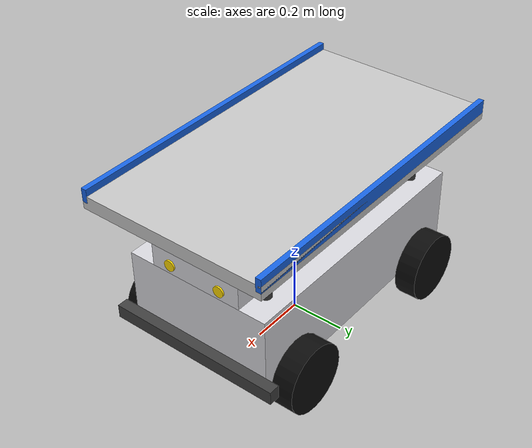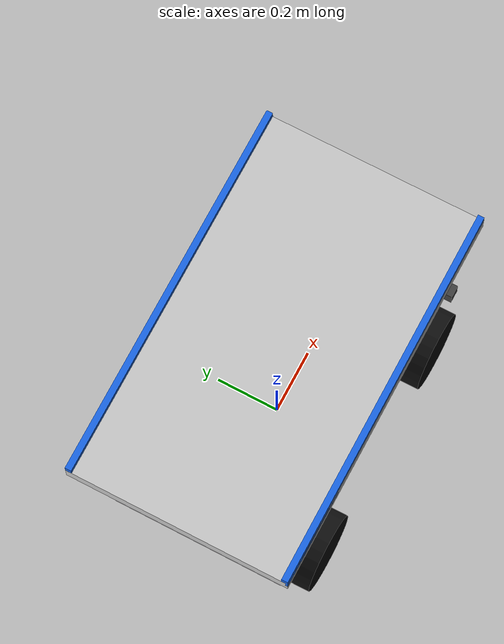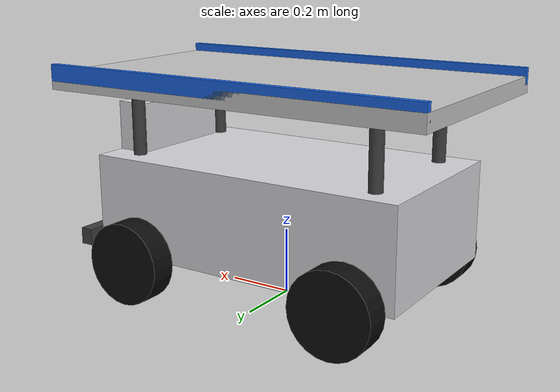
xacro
<?xml version="1.0"?>
<robot xmlns:xacro="http://www.ros.org/wiki/xacro" name="$(arg robot_core_name)">

    <xacro:arg name="robot_core_name" default="warehouse_bot"/>
    <xacro:arg name="namespace" default=""/>

    <xacro:if value="${'$(arg namespace)' != ''}">
        <xacro:property name="topic_prefix" value="/$(arg namespace)" />
        <xacro:property name="frame_prefix" value="$(arg namespace)/" />
    </xacro:if>
    <xacro:if value="${'$(arg namespace)' == ''}">
        <xacro:property name="topic_prefix" value="" />
        <xacro:property name="frame_prefix" value="" />
    </xacro:if>

    <!-- Inclure les macros d'inertie -->
    <xacro:include filename="inertial_macros.xacro"/>

    <!-- Inclure le corps du robot -->
    <xacro:include filename="robot_core.xacro"/>

    <!-- Inclure le LiDAR -->
    <xacro:include filename="lidar.xacro"/>

    <!-- Inclure l'IMU -->
    <xacro:include filename="imu.xacro"/>

    <!-- Inclure les plugins Gazebo -->
    <xacro:include filename="gazebo_control.xacro"/>

</robot>

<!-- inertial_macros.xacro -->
<robot xmlns:xacro="http://www.ros.org/wiki/xacro">

    <!-- Macro pour l'inertie d'une boîte rectangulaire -->
    <xacro:macro name="inertial_box" params="mass x y z *origin">
        <inertial>
            <xacro:insert_block name="origin"/>
            <mass value="${mass}" />
            <inertia ixx="${(1/12) * mass * (y*y+z*z)}" ixy="0.0" ixz="0.0"
                     iyy="${(1/12) * mass * (x*x+z*z)}" iyz="0.0"
                     izz="${(1/12) * mass * (x*x+y*y)}" />
        </inertial>
    </xacro:macro>

    <!-- Macro pour l'inertie d'un cylindre (axe Z) -->
    <xacro:macro name="inertial_cylinder" params="mass length radius *origin">
        <inertial>
            <xacro:insert_block name="origin"/>
            <mass value="${mass}" />
            <inertia ixx="${(1/12) * mass * (3*radius*radius + length*length)}" ixy="0.0" ixz="0.0"
                     iyy="${(1/12) * mass * (3*radius*radius + length*length)}" iyz="0.0"
                     izz="${(1/2) * mass * (radius*radius)}" />
        </inertial>
    </xacro:macro>

    <!-- Macro pour l'inertie d'une sphère -->
    <xacro:macro name="inertial_sphere" params="mass radius *origin">
        <inertial>
            <xacro:insert_block name="origin"/>
            <mass value="${mass}" />
            <inertia ixx="${(2/5) * mass * (radius*radius)}" ixy="0.0" ixz="0.0"
                     iyy="${(2/5) * mass * (radius*radius)}" iyz="0.0"
                     izz="${(2/5) * mass * (radius*radius)}" />
        </inertial>
    </xacro:macro>

</robot>

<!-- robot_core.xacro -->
<!-- robot_core.xacro — Corps principal du robot AMR d'entrepôt -->
<robot xmlns:xacro="http://www.ros.org/wiki/xacro">

    <!-- Châssis principal -->
    <xacro:property name="chassis_length" value="1.0"/>
    <xacro:property name="chassis_width"  value="0.55"/>
    <xacro:property name="chassis_height" value="0.30"/>
    <xacro:property name="chassis_mass"   value="40.0"/>

    <!-- Roues (4 roues motrices ou libres, type skid-steer) -->
    <xacro:property name="wheel_radius"   value="0.125"/>
    <xacro:property name="wheel_width"    value="0.08"/>
    <xacro:property name="wheel_mass"     value="3.0"/>
    <xacro:property name="wheel_x_offset" value="0.35"/>
    <xacro:property name="wheel_y_offset" value="0.315"/>

    <!-- Plateau cargo -->
    <xacro:property name="cargo_length"   value="1.20"/>
    <xacro:property name="cargo_width"    value="0.70"/>
    <xacro:property name="cargo_height"   value="0.05"/>
    <xacro:property name="cargo_mass"     value="5.0"/>

    <!-- Mât avant (support LiDAR + phares) -->
    <xacro:property name="mast_length"    value="0.10"/>
    <xacro:property name="mast_width"     value="0.35"/>
    <xacro:property name="mast_height"    value="0.15"/>
    <xacro:property name="mast_mass"      value="2.0"/>

    <!-- COULEURS (materials URDF pour RViz) -->
    <material name="light_grey">  <color rgba="0.78 0.78 0.78 1.0"/> </material>
    <material name="dark_grey">   <color rgba="0.25 0.25 0.25 1.0"/> </material>
    <material name="silver">      <color rgba="0.85 0.85 0.87 1.0"/> </material>
    <material name="black">       <color rgba="0.05 0.05 0.05 1.0"/> </material>
    <material name="red">         <color rgba="0.85 0.10 0.10 1.0"/> </material>
    <material name="yellow">      <color rgba="1.0 0.85 0.0 1.0"/>   </material>
    <material name="orange">      <color rgba="1.0 0.55 0.0 1.0"/>   </material>
    <material name="green_led">   <color rgba="0.2 0.9 0.2 1.0"/>    </material>
    <material name="blue">        <color rgba="0.1 0.4 0.9 1.0"/>    </material>

    <!-- projection au sol du robot (z = 0) -->
    <link name="base_footprint"/>

    <!-- Élevé de wheel_radius au-dessus du sol-->
    <joint name="base_joint" type="fixed">
        <parent link="base_footprint"/>
        <child link="base_link"/>
        <origin xyz="0 0 ${wheel_radius}" rpy="0 0 0"/>
    </joint>

    <link name="base_link"/>

    <!-- CHÂSSIS boîte métallique principale  -->
    <joint name="chassis_joint" type="fixed">
        <parent link="base_link"/>
        <child link="chassis_link"/>
        <origin xyz="0 0 ${chassis_height/2}" rpy="0 0 0"/>
    </joint>

    <link name="chassis_link">
        <visual>
            <origin xyz="0 0 0" rpy="0 0 0"/>
            <geometry>
                <box size="${chassis_length} ${chassis_width} ${chassis_height}"/>
            </geometry>
            <material name="silver"/>
        </visual>
        <collision>
            <origin xyz="0 0 0" rpy="0 0 0"/>
            <geometry>
                <box size="${chassis_length} ${chassis_width} ${chassis_height}"/>
            </geometry>
        </collision>
        <xacro:inertial_box mass="${chassis_mass}" x="${chassis_length}" y="${chassis_width}" z="${chassis_height}">
            <origin xyz="0 0 0" rpy="0 0 0"/>
        </xacro:inertial_box>
    </link>

    <gazebo reference="chassis_link">
        <material>Gazebo/Grey</material>
    </gazebo>

    <!-- MACROS POUR LES 4 ROUES -->
    <xacro:macro name="left_wheel" params="prefix x_offset">
        <joint name="${prefix}_left_wheel_joint" type="continuous">
            <parent link="base_link"/>
            <child link="${prefix}_left_wheel_link"/>
            <origin xyz="${x_offset} ${wheel_y_offset} 0" rpy="-1.5708 0 0"/>
            <axis xyz="0 0 1"/>
        </joint>
        <link name="${prefix}_left_wheel_link">
            <visual>
                <geometry>
                    <cylinder radius="${wheel_radius}" length="${wheel_width}"/>
                </geometry>
                <material name="black"/>
            </visual>
            <collision>
                <geometry>
                    <sphere radius="${wheel_radius}"/>
                </geometry>
            </collision>
            <xacro:inertial_cylinder mass="${wheel_mass}" length="${wheel_width}" radius="${wheel_radius}">
                <origin xyz="0 0 0" rpy="0 0 0"/>
            </xacro:inertial_cylinder>
        </link>
        <gazebo reference="${prefix}_left_wheel_link">
            <material>Gazebo/FlatBlack</material>
            <mu1>0.9</mu1>
            <mu2>0.05</mu2>
            <fdir1>1 0 0</fdir1>
        </gazebo>
    </xacro:macro>

    <xacro:macro name="right_wheel" params="prefix x_offset">
        <joint name="${prefix}_right_wheel_joint" type="continuous">
            <parent link="base_link"/>
            <child link="${prefix}_right_wheel_link"/>
            <origin xyz="${x_offset} -${wheel_y_offset} 0" rpy="1.5708 0 0"/>
            <axis xyz="0 0 -1"/>
        </joint>
        <link name="${prefix}_right_wheel_link">
            <visual>
                <geometry>
                    <cylinder radius="${wheel_radius}" length="${wheel_width}"/>
                </geometry>
                <material name="black"/>
            </visual>
            <collision>
                <geometry>
                    <sphere radius="${wheel_radius}"/>
                </geometry>
            </collision>
            <xacro:inertial_cylinder mass="${wheel_mass}" length="${wheel_width}" radius="${wheel_radius}">
                <origin xyz="0 0 0" rpy="0 0 0"/>
            </xacro:inertial_cylinder>
        </link>
        <gazebo reference="${prefix}_right_wheel_link">
            <material>Gazebo/FlatBlack</material>
            <mu1>0.9</mu1>
            <mu2>0.05</mu2>
            <fdir1>1 0 0</fdir1>
        </gazebo>
    </xacro:macro>

    <!-- Instanciation des 4 roues -->
    <xacro:left_wheel prefix="front" x_offset="${wheel_x_offset}"/>
    <xacro:left_wheel prefix="rear" x_offset="-${wheel_x_offset}"/>
    <xacro:right_wheel prefix="front" x_offset="${wheel_x_offset}"/>
    <xacro:right_wheel prefix="rear" x_offset="-${wheel_x_offset}"/>

    <!-- PILIERS DE SUPPORT — 4 montants reliant le châssis au plateau -->
    <xacro:property name="post_radius" value="0.02"/>
    <xacro:property name="post_length" value="0.20"/>
    <xacro:property name="post_z" value="${chassis_height/2 + post_length/2}"/>

    <xacro:macro name="support_post" params="prefix x y">
        <joint name="${prefix}_post_joint" type="fixed">
            <parent link="chassis_link"/>
            <child link="${prefix}_post_link"/>
            <origin xyz="${x} ${y} ${post_z}" rpy="0 0 0"/>
        </joint>
        <link name="${prefix}_post_link">
            <visual>
                <geometry>
                    <cylinder radius="${post_radius}" length="${post_length}"/>
                </geometry>
                <material name="dark_grey"/>
            </visual>
            <collision>
                <geometry>
                    <cylinder radius="${post_radius}" length="${post_length}"/>
                </geometry>
            </collision>
            <xacro:inertial_cylinder mass="0.2" length="${post_length}" radius="${post_radius}">
                <origin xyz="0 0 0" rpy="0 0 0"/>
            </xacro:inertial_cylinder>
        </link>
        <gazebo reference="${prefix}_post_link">
            <material>Gazebo/DarkGrey</material>
        </gazebo>
    </xacro:macro>

    <!-- Instanciation des 4 piliers aux coins du plateau -->
    <xacro:support_post prefix="front_left"  x="0.4"  y="0.2"/>
    <xacro:support_post prefix="front_right" x="0.4"  y="-0.2"/>
    <xacro:support_post prefix="rear_left"   x="-0.4" y="0.2"/>
    <xacro:support_post prefix="rear_right"  x="-0.4" y="-0.2"/>

    <!--  PLATEAU CARGO — surface plate pour transporter les cartons -->
    <xacro:property name="cargo_z_offset" value="${chassis_height/2 + post_length + cargo_height/2}"/>

    <joint name="cargo_platform_joint" type="fixed">
        <parent link="chassis_link"/>
        <child link="cargo_platform_link"/>
        <origin xyz="0 0 ${cargo_z_offset}" rpy="0 0 0"/>
    </joint>

    <link name="cargo_platform_link">
        <visual>
            <origin xyz="0 0 0" rpy="0 0 0"/>
            <geometry>
                <box size="${cargo_length} ${cargo_width} ${cargo_height}"/>
            </geometry>
            <material name="light_grey"/>
        </visual>
        <collision>
            <origin xyz="0 0 0" rpy="0 0 0"/>
            <geometry>
                <box size="${cargo_length} ${cargo_width} ${cargo_height}"/>
            </geometry>
        </collision>
        <xacro:inertial_box mass="${cargo_mass}" x="${cargo_length}" y="${cargo_width}" z="${cargo_height}">
            <origin xyz="0 0 0" rpy="0 0 0"/>
        </xacro:inertial_box>
    </link>

    <gazebo reference="cargo_platform_link">
        <material>Gazebo/White</material>
    </gazebo>

    <!-- RAILS LATÉRAUX — décoration sur le plateau pour correspondre à l'image -->
    <xacro:macro name="side_rail" params="prefix y_pos color">
        <joint name="${prefix}_rail_joint" type="fixed">
            <parent link="cargo_platform_link"/>
            <child link="${prefix}_rail_link"/>
            <origin xyz="0 ${y_pos} 0.025" rpy="0 0 0"/>
        </joint>
        <link name="${prefix}_rail_link">
            <visual>
                <geometry>
                    <box size="${cargo_length} 0.02 0.05"/>
                </geometry>
                <material name="${color}"/>
            </visual>
            <xacro:inertial_box mass="0.5" x="${cargo_length}" y="0.02" z="0.05">
                <origin xyz="0 0 0" rpy="0 0 0"/>
            </xacro:inertial_box>
        </link>
        <gazebo reference="${prefix}_rail_link">
            <material>Gazebo/Blue</material>
        </gazebo>
    </xacro:macro>

    <xacro:side_rail prefix="left"  y_pos="0.34" color="blue"/>
    <xacro:side_rail prefix="right" y_pos="-0.34" color="blue"/>

    <!-- PARE-CHOCS AVANT — barre de protection industrielle -->
    <joint name="front_bumper_joint" type="fixed">
        <parent link="chassis_link"/>
        <child link="front_bumper_link"/>
        <origin xyz="${chassis_length/2 + 0.02} 0 -0.10" rpy="0 0 0"/>
    </joint>

    <link name="front_bumper_link">
        <visual>
            <geometry>
                <box size="0.04 ${chassis_width + 0.10} 0.05"/>
            </geometry>
            <material name="dark_grey"/>
        </visual>
        <collision>
            <geometry>
                <box size="0.04 ${chassis_width + 0.10} 0.05"/>
            </geometry>
        </collision>
        <xacro:inertial_box mass="1.0" x="0.04" y="${chassis_width + 0.10}" z="0.05">
            <origin xyz="0 0 0" rpy="0 0 0"/>
        </xacro:inertial_box>
    </link>

    <gazebo reference="front_bumper_link">
        <material>Gazebo/DarkGrey</material>
    </gazebo>

    <!--  MÂT AVANT — structure portant le LiDAR et les phares  -->
    <joint name="front_mast_joint" type="fixed">
        <parent link="chassis_link"/>
        <child link="front_mast_link"/>
        <origin xyz="${chassis_length/2 - 0.05} 0 ${chassis_height/2 + mast_height/2}" rpy="0 0 0"/>
    </joint>

    <link name="front_mast_link">
        <visual>
            <geometry>
                <box size="${mast_length} ${mast_width} ${mast_height}"/>
            </geometry>
            <material name="silver"/>
        </visual>
        <collision>
            <geometry>
                <box size="${mast_length} ${mast_width} ${mast_height}"/>
            </geometry>
        </collision>
        <xacro:inertial_box mass="${mast_mass}" x="${mast_length}" y="${mast_width}" z="${mast_height}">
            <origin xyz="0 0 0" rpy="0 0 0"/>
        </xacro:inertial_box>
    </link>

    <gazebo reference="front_mast_link">
        <material>Gazebo/Grey</material>
    </gazebo>

    <!--  BOUTON D'ARRÊT D'URGENCE (E-Stop) — visuel décoratif-->
    <joint name="estop_joint" type="fixed">
        <parent link="front_mast_link"/>
        <child link="estop_link"/>
        <origin xyz="0.05 -0.12 0.05" rpy="0 1.5708 0"/>
    </joint>

    <link name="estop_link">
        <visual>
            <geometry>
                <cylinder radius="0.02" length="0.02"/>
            </geometry>
            <material name="red"/>
        </visual>
    </link>

    <gazebo reference="estop_link">
        <material>Gazebo/Red</material>
    </gazebo>

    <!--  PHARES AVANT — 2 lumières LED sur le mât -->
    <xacro:macro name="headlight" params="prefix y_offset">
        <joint name="${prefix}_light_joint" type="fixed">
            <parent link="front_mast_link"/>
            <child link="${prefix}_light_link"/>
            <origin xyz="0.051 ${y_offset} -0.04" rpy="0 1.5708 0"/>
        </joint>
        <link name="${prefix}_light_link">
            <visual>
                <geometry>
                    <cylinder radius="0.02" length="0.01"/>
                </geometry>
                <material name="yellow"/>
            </visual>
        </link>
        <gazebo reference="${prefix}_light_link">
            <material>Gazebo/Yellow</material>
        </gazebo>
    </xacro:macro>

    <xacro:headlight prefix="left_head"  y_offset="0.10"/>
    <xacro:headlight prefix="right_head" y_offset="-0.10"/>

    <!-- INDICATEUR LED STATUS — petit voyant vert sur le mât -->
    <joint name="status_led_joint" type="fixed">
        <parent link="front_mast_link"/>
        <child link="status_led_link"/>
        <origin xyz="0.051 0 0.05" rpy="0 1.5708 0"/>
    </joint>

    <link name="status_led_link">
        <visual>
            <geometry>
                <cylinder radius="0.01" length="0.01"/>
            </geometry>
            <material name="green_led"/>
        </visual>
    </link>

    <gazebo reference="status_led_link">
        <material>Gazebo/Green</material>
    </gazebo>

</robot>

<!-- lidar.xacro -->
<!--
     lidar.xacro — Capteur LiDAR 2D monté sur le mât avant
     Type gpu_lidar, 360° scan, portée 0.12–10 m.
-->
<robot xmlns:xacro="http://www.ros.org/wiki/xacro">

    <!--  LIEN ET JOINT DU LiDAR -->
    <joint name="lidar_joint" type="fixed">
        <parent link="front_mast_link"/>
        <child link="lidar_link"/>
        <origin xyz="0 0 0.07" rpy="0 0 0"/>
    </joint>

    <link name="lidar_link">
        <visual>
            <geometry>
                <cylinder radius="0.02" length="0.04"/>
            </geometry>
            <material name="black"/>
        </visual>
        <collision>
            <geometry>
                <cylinder radius="0.02" length="0.04"/>
            </geometry>
        </collision>
        <xacro:inertial_cylinder mass="0.12" length="0.04" radius="0.02">
            <origin xyz="0 0 0" rpy="0 0 0"/>
        </xacro:inertial_cylinder>
    </link>

    <gazebo reference="lidar_link">
        <material>Gazebo/Red</material>
        <sensor name="lidar" type="gpu_lidar">
            <pose>0 0 0 0 0 0</pose>
            <topic>scan</topic>
            <update_rate>10</update_rate>
            <gz_frame_id>${frame_prefix}lidar_link</gz_frame_id>
            <lidar>
                <scan>
                    <horizontal>
                        <samples>360</samples>
                        <resolution>1</resolution>
                        <min_angle>-3.14159265</min_angle>
                        <max_angle>3.14159265</max_angle>
                    </horizontal>
                    <vertical>
                        <samples>1</samples>
                        <resolution>1</resolution>
                        <min_angle>0</min_angle>
                        <max_angle>0</max_angle>
                    </vertical>
                </scan>
                <range>
                    <min>0.12</min>
                    <max>10.0</max>
                    <resolution>0.01</resolution>
                </range>
                <noise>
                    <type>gaussian</type>
                    <mean>0.0</mean>
                    <stddev>0.01</stddev>
                </noise>
            </lidar>
            <always_on>1</always_on>
            <visualize>true</visualize>
        </sensor>
    </gazebo>

</robot>

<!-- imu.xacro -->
<robot xmlns:xacro="http://www.ros.org/wiki/xacro">

    <joint name="imu_joint" type="fixed">
        <parent link="chassis_link"/>
        <child link="imu_link"/>
        <origin xyz="0 0 0" rpy="0 0 0"/>
    </joint>

    <link name="imu_link">
        <visual>
            <geometry>
                <box size="0.03 0.03 0.01"/>
            </geometry>
            <material name="yellow"/>
        </visual>
        <xacro:inertial_box mass="0.02" x="0.03" y="0.03" z="0.01">
            <origin xyz="0 0 0" rpy="0 0 0"/>
        </xacro:inertial_box>
    </link>

    <!--
         PLUGIN CAPTEUR IMU — Gazebo Harmonic
         Configuration :
           - Fréquence : 50 Hz
           - Publication sur le topic "imu"
           - Frame de référence : imu_link
    -->
    <gazebo reference="imu_link">
        <sensor name="imu_sensor" type="imu">
            <pose>0 0 0 0 0 0</pose>
            <topic>${topic_prefix}/imu</topic>
            <update_rate>50</update_rate>
            <gz_frame_id>${frame_prefix}imu_link</gz_frame_id>
            <always_on>1</always_on>
            <visualize>false</visualize>
        </sensor>
    </gazebo>

</robot>
